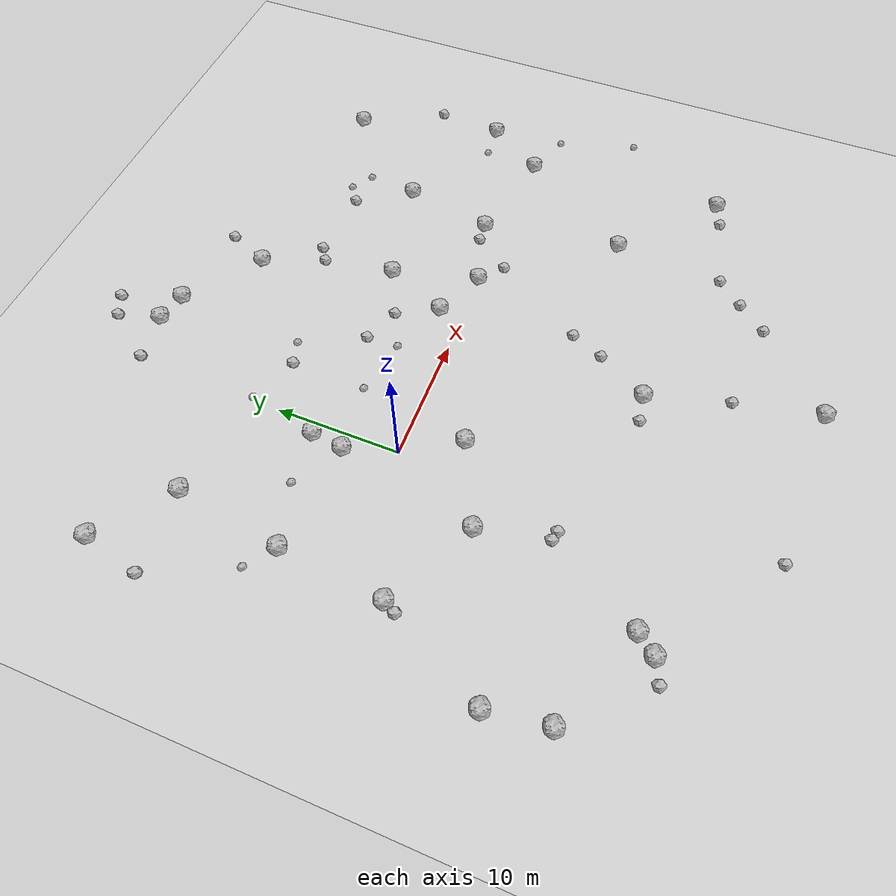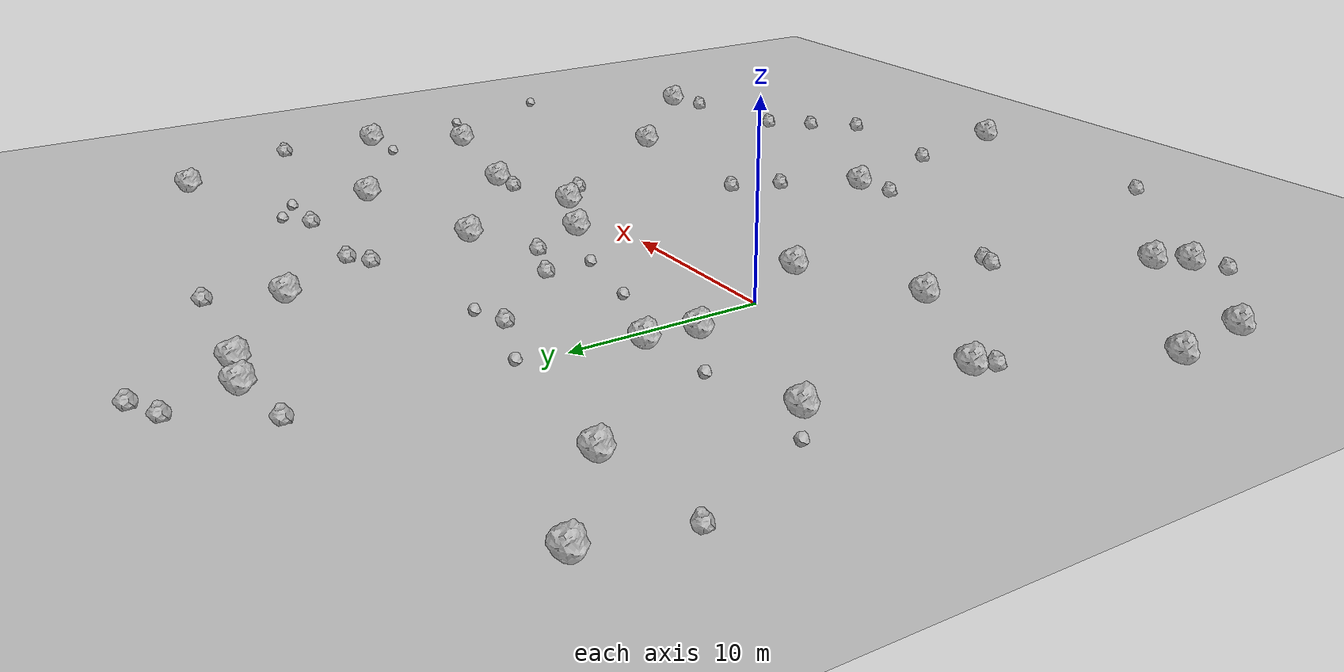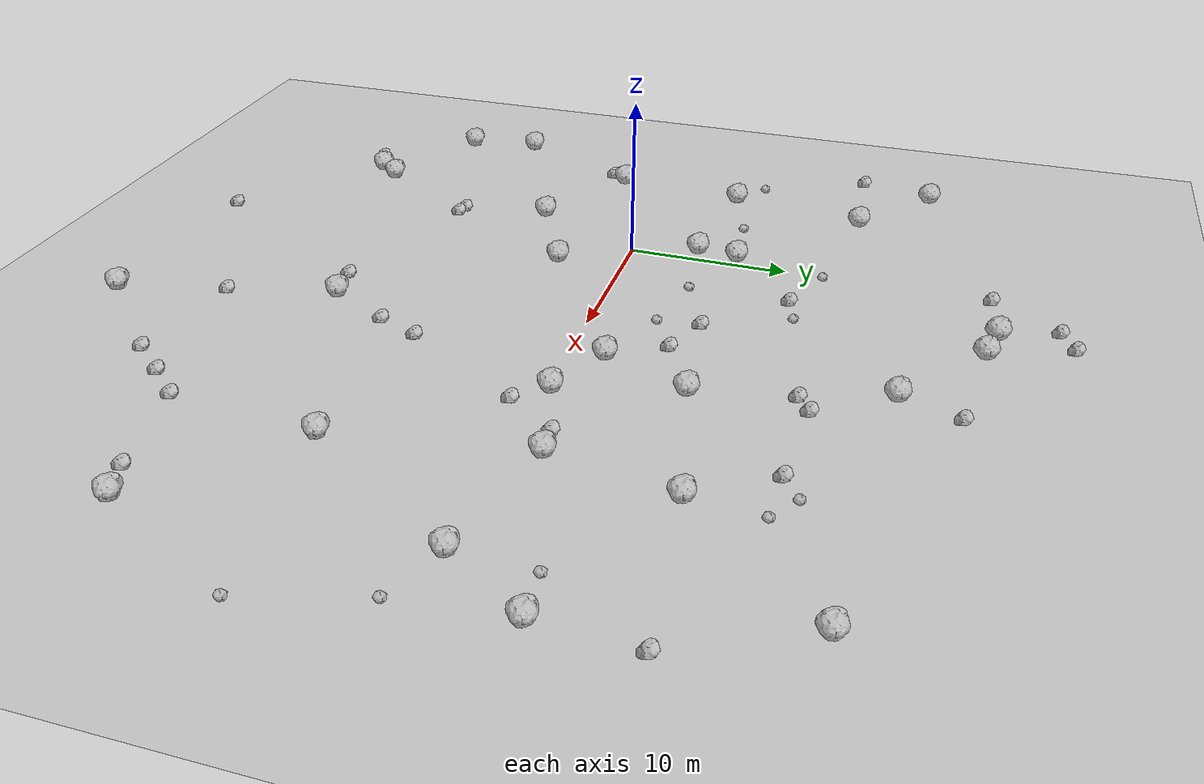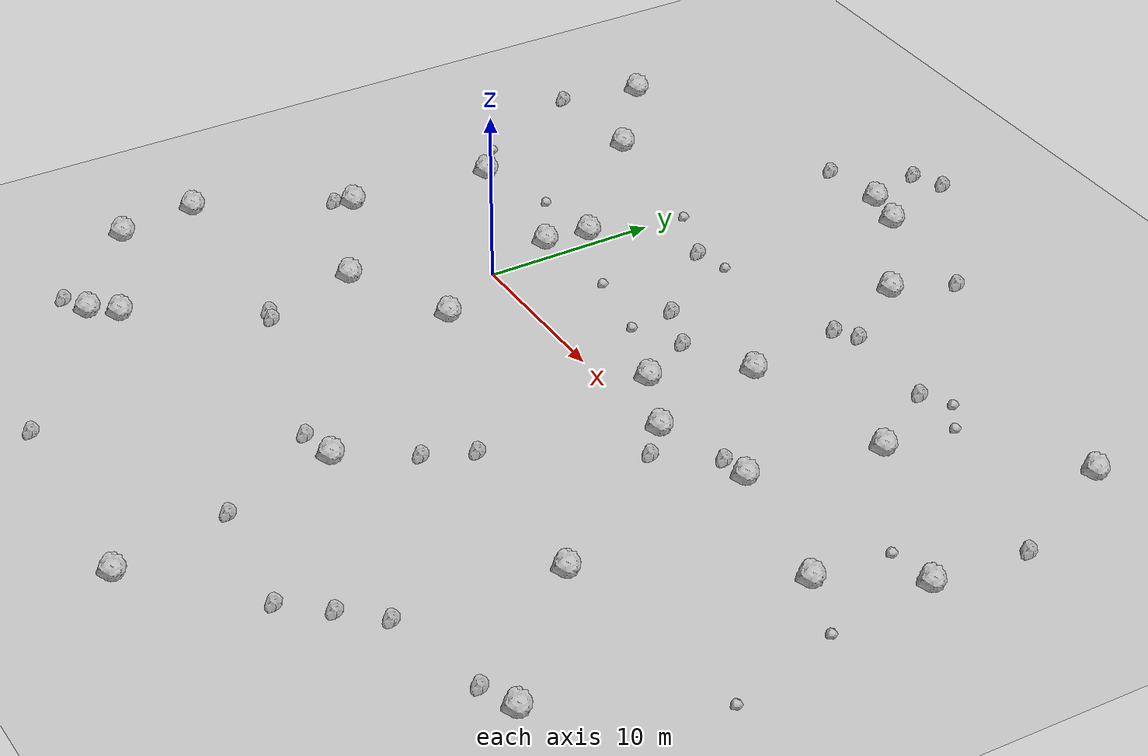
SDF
<sdf version="1.6">
 <world name="default">
  <include><uri>model://custom_ground</uri></include>
  <include><uri>model://sun</uri></include>
  <model name="rock1_0_0">
   <include><uri>model://rock1</uri><pose>17.490028786285016 0.2157174380187037 0.5 0 0 0</pose></include>
  </model>
  <model name="rock1_0_1">
   <include><uri>model://rock1</uri><pose>15.552308133637752 7.2812238678802785 0.5 0 0 0</pose></include>
  </model>
  <model name="rock1_0_2">
   <include><uri>model://rock1</uri><pose>-13.959517511296122 -16.448169961687878 0.5 0 0 0</pose></include>
  </model>
  <model name="rock1_0_3">
   <include><uri>model://rock1</uri><pose>-6.426104290065439 -19.773282048067323 0.5 0 0 0</pose></include>
  </model>
  <model name="rock1_0_4">
   <include><uri>model://rock1</uri><pose>-10.513384329000337 -3.477229423615217 0.5 0 0 0</pose></include>
  </model>
  <model name="rock1_0_5">
   <include><uri>model://rock1</uri><pose>34.9281571525718 4.83818163028905 0.5 0 0 0</pose></include>
  </model>
  <model name="rock1_0_6">
   <include><uri>model://rock1</uri><pose>-7.565671494527473 -21.202897996814464 0.5 0 0 0</pose></include>
  </model>
  <model name="rock1_0_7">
   <include><uri>model://rock1</uri><pose>31.737882586892837 17.3375868947572 0.5 0 0 0</pose></include>
  </model>
  <model name="rock1_0_8">
   <include><uri>model://rock1</uri><pose>12.695304742194729 18.15922169417653 0.5 0 0 0</pose></include>
  </model>
  <model name="rock1_0_9">
   <include><uri>model://rock1</uri><pose>-0.8341045443754744 6.677433893174474 0.5 0 0 0</pose></include>
  </model>
  <model name="rock1_0_10">
   <include><uri>model://rock1</uri><pose>4.318443628732329 23.02352458215067 0.5 0 0 0</pose></include>
  </model>
  <model name="rock1_0_11">
   <include><uri>model://rock1</uri><pose>-3.569362383473706 -7.1826873025046645 0.5 0 0 0</pose></include>
  </model>
  <model name="rock1_0_12">
   <include><uri>model://rock1</uri><pose>-13.767106848626367 17.734528653284357 0.5 0 0 0</pose></include>
  </model>
  <model name="rock1_0_13">
   <include><uri>model://rock1</uri><pose>-14.600755058833219 -11.815113729951175 0.5 0 0 0</pose></include>
  </model>
  <model name="rock1_0_14">
   <include><uri>model://rock1</uri><pose>6.7811659401622 22.473136450543258 0.5 0 0 0</pose></include>
  </model>
  <model name="rock1_0_15">
   <include><uri>model://rock1</uri><pose>-1.176387849155752 4.064066555425967 0.5 0 0 0</pose></include>
  </model>
  <model name="rock1_0_16">
   <include><uri>model://rock1</uri><pose>31.767623865012844 -0.0036093725433516965 0.5 0 0 0</pose></include>
  </model>
  <model name="rock1_0_17">
   <include><uri>model://rock1</uri><pose>-8.426478706242102 13.525920877029584 0.5 0 0 0</pose></include>
  </model>
  <model name="rock1_0_18">
   <include><uri>model://rock1</uri><pose>13.340647440166563 2.0593884351198355 0.5 0 0 0</pose></include>
  </model>
  <model name="rock1_0_19">
   <include><uri>model://rock1</uri><pose>11.24833495821025 -15.61057470901124 0.5 0 0 0</pose></include>
  </model>
  <model name="rock1_0_20">
   <include><uri>model://rock1</uri><pose>32.90035047088615 -16.819939998485275 0.5 0 0 0</pose></include>
  </model>
  <model name="rock1_0_21">
   <include><uri>model://rock1</uri><pose>25.226047405222083 -9.812946747274715 0.5 0 0 0</pose></include>
  </model>
  <model name="rock1_0_22">
   <include><uri>model://rock1</uri><pose>24.703914158098655 9.235450460300605 0.5 0 0 0</pose></include>
  </model>
  <model name="rock1_0_23">
   <include><uri>model://rock1</uri><pose>-9.721085314457332 4.894665270507232 0.5 0 0 0</pose></include>
  </model>
  <model name="rock1_0_24">
   <include><uri>model://rock1</uri><pose>23.266448646647703 1.7394043263250687 0.5 0 0 0</pose></include>
  </model>
  <model name="rock1_0_25">
   <include><uri>model://rock1</uri><pose>2.6724752828405123 -4.243457842265791 0.5 0 0 0</pose></include>
  </model>
  <model name="rock1_0_26">
   <include><uri>model://rock1</uri><pose>14.528146438450719 -28.95028437905785 0.5 0 0 0</pose></include>
  </model>
  <model name="rock2_0_0">
   <include><uri>model://rock2</uri><pose>21.772111254898228 13.600756680236472 0.3 0 0 0</pose></include>
  </model>
  <model name="rock2_0_1">
   <include><uri>model://rock2</uri><pose>14.663452946699351 -8.969330207973282 0.3 0 0 0</pose></include>
  </model>
  <model name="rock2_0_2">
   <include><uri>model://rock2</uri><pose>8.529473537914143 6.467718676867854 0.3 0 0 0</pose></include>
  </model>
  <model name="rock2_0_3">
   <include><uri>model://rock2</uri><pose>1.6079031754458626 -28.081586127538696 0.3 0 0 0</pose></include>
  </model>
  <model name="rock2_0_4">
   <include><uri>model://rock2</uri><pose>21.49086262873253 1.6072208820885479 0.3 0 0 0</pose></include>
  </model>
  <model name="rock2_0_5">
   <include><uri>model://rock2</uri><pose>3.249894448757857 26.474559433890953 0.3 0 0 0</pose></include>
  </model>
  <model name="rock2_0_6">
   <include><uri>model://rock2</uri><pose>0.4247086435552916 22.52104939537066 0.3 0 0 0</pose></include>
  </model>
  <model name="rock2_0_7">
   <include><uri>model://rock2</uri><pose>-11.058804746651562 -4.449608064901174 0.3 0 0 0</pose></include>
  </model>
  <model name="rock2_0_8">
   <include><uri>model://rock2</uri><pose>-9.253338144996535 -21.945245722285307 0.3 0 0 0</pose></include>
  </model>
  <model name="rock2_0_9">
   <include><uri>model://rock2</uri><pose>35.26114516598928 10.42156588927692 0.3 0 0 0</pose></include>
  </model>
  <model name="rock2_0_10">
   <include><uri>model://rock2</uri><pose>-14.91739128915076 13.1311883223729 0.3 0 0 0</pose></include>
  </model>
  <model name="rock2_0_11">
   <include><uri>model://rock2</uri><pose>8.928657171089132 -15.948631528100243 0.3 0 0 0</pose></include>
  </model>
  <model name="rock2_0_12">
   <include><uri>model://rock2</uri><pose>19.245222391107248 -1.425029726743098 0.3 0 0 0</pose></include>
  </model>
  <model name="rock2_0_13">
   <include><uri>model://rock2</uri><pose>11.50659969699523 5.330701066742542 0.3 0 0 0</pose></include>
  </model>
  <model name="rock2_0_14">
   <include><uri>model://rock2</uri><pose>13.501333065897413 -11.617174336484116 0.3 0 0 0</pose></include>
  </model>
  <model name="rock2_0_15">
   <include><uri>model://rock2</uri><pose>4.172303287446944 10.923406980248117 0.3 0 0 0</pose></include>
  </model>
  <model name="rock2_0_16">
   <include><uri>model://rock2</uri><pose>14.08243281720869 21.668331744075985 0.3 0 0 0</pose></include>
  </model>
  <model name="rock2_0_17">
   <include><uri>model://rock2</uri><pose>5.018882316853507 27.320691506718298 0.3 0 0 0</pose></include>
  </model>
  <model name="rock2_0_18">
   <include><uri>model://rock2</uri><pose>-1.724356932800923 -12.837849766764133 0.3 0 0 0</pose></include>
  </model>
  <model name="rock2_0_19">
   <include><uri>model://rock2</uri><pose>22.508345685757348 -20.946243619046932 0.3 0 0 0</pose></include>
  </model>
  <model name="rock2_0_20">
   <include><uri>model://rock2</uri><pose>24.40505440110659 -18.890016368429905 0.3 0 0 0</pose></include>
  </model>
  <model name="rock2_0_21">
   <include><uri>model://rock2</uri><pose>14.525786734457974 13.133107457313486 0.3 0 0 0</pose></include>
  </model>
  <model name="rock2_0_22">
   <include><uri>model://rock2</uri><pose>15.721531008282824 13.931231923244844 0.3 0 0 0</pose></include>
  </model>
  <model name="rock2_0_23">
   <include><uri>model://rock2</uri><pose>-2.4727630085940397 -12.644099898071207 0.3 0 0 0</pose></include>
  </model>
  <model name="rock2_0_24">
   <include><uri>model://rock2</uri><pose>20.56412871474995 -23.211723431182826 0.3 0 0 0</pose></include>
  </model>
  <model name="rock2_0_25">
   <include><uri>model://rock2</uri><pose>30.69739613234841 -17.57250051455209 0.3 0 0 0</pose></include>
  </model>
  <model name="rock2_0_26">
   <include><uri>model://rock2</uri><pose>13.02518508587881 -22.155175590378175 0.3 0 0 0</pose></include>
  </model>
  <model name="rock3_0_0">
   <include><uri>model://rock3</uri><pose>4.068485069165327 4.711863552902287 0.2 0 0 0</pose></include>
  </model>
  <model name="rock3_0_1">
   <include><uri>model://rock3</uri><pose>0.2976206375957844 12.356434172589893 0.2 0 0 0</pose></include>
  </model>
  <model name="rock3_0_2">
   <include><uri>model://rock3</uri><pose>-5.087694941448117 6.295776966280016 0.2 0 0 0</pose></include>
  </model>
  <model name="rock3_0_3">
   <include><uri>model://rock3</uri><pose>37.52687665882146 -8.011556580598647 0.2 0 0 0</pose></include>
  </model>
  <model name="rock3_0_4">
   <include><uri>model://rock3</uri><pose>8.643608142245032 3.8461926543505456 0.2 0 0 0</pose></include>
  </model>
  <model name="rock3_0_5">
   <include><uri>model://rock3</uri><pose>23.281007262254377 14.626748347326512 0.2 0 0 0</pose></include>
  </model>
  <model name="rock3_0_6">
   <include><uri>model://rock3</uri><pose>25.042160134183447 13.464831464630713 0.2 0 0 0</pose></include>
  </model>
  <model name="rock3_0_7">
   <include><uri>model://rock3</uri><pose>-11.922377867677385 6.519547826876149 0.2 0 0 0</pose></include>
  </model>
  <model name="rock3_0_8">
   <include><uri>model://rock3</uri><pose>35.54081393427688 -1.43126094069369 0.2 0 0 0</pose></include>
  </model>
  <model name="rock3_0_9">
   <include><uri>model://rock3</uri><pose>31.907394233141254 4.603401516512932 0.2 0 0 0</pose></include>
  </model>
  <model name="rock3_0_10">
   <include><uri>model://rock3</uri><pose>6.089348409005645 11.475223032600702 0.2 0 0 0</pose></include>
  </model>
 </world>
</sdf>
